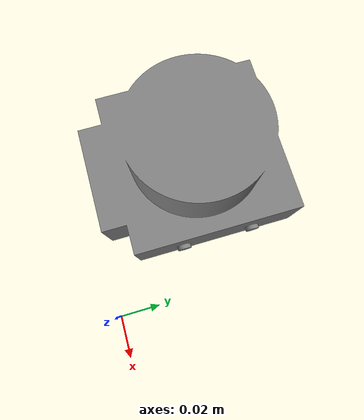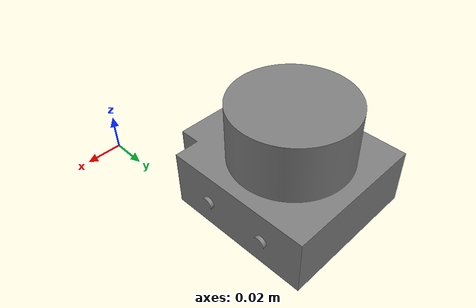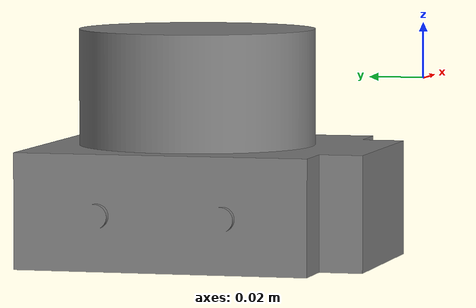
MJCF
<?xml version="1.0" encoding="utf-8"?>
<mujoco model="link">
  <compiler angle="radian" meshdir="assets" autolimits="true" inertiafromgeom="false" fusestatic="false"/>
  <option timestep="0.001" integrator="implicitfast" solver="Newton" iterations="50" ls_iterations="10" gravity="0 0 -9.81"/>
  <default>
    <geom density="0"/>
    <default class="visual">
      <geom contype="0" conaffinity="0" group="2" density="0"/>
    </default>
    <default class="collision">
      <geom group="3" contype="1" conaffinity="1" condim="3" friction="1.0 0.005 0.0001" density="0"/>
    </default>
    <default class="wheel">
      <geom group="3" contype="1" conaffinity="1" condim="3" friction="1.2 0.005 0.0001" density="0"/>
    </default>
    <default class="finger_pad">
      <geom group="3" contype="1" conaffinity="1" condim="4" friction="1.0 0.005 0.0001" solref="0.02 1" solimp="0.9 0.95 0.001" density="0"/>
    </default>
    <default class="sensor_collision">
      <geom group="4" contype="1" conaffinity="1" density="0"/>
    </default>
  </default>
  <asset>
    <mesh name="nanoscan3_visual" file="visual/NANS3.obj"/>
    <mesh name="nanoscan3_collision" file="visual/NANS3_collision.stl"/>
  </asset>
  <worldbody>
    <body name="link" pos="-0.0803 0.053 0" quat="0.7071067812 0 0 -0.7071067812">
      <geom class="visual" type="mesh" mesh="nanoscan3_visual" pos="-0.01 -0.08 -0.04" quat="0.7071067812 0 0 0.7071067812"/>
      <geom class="sensor_collision" type="mesh" mesh="nanoscan3_collision" pos="-0.01 -0.08 -0.04" quat="0.7071067812 0 0 0.7071067812"/>
      <site name="scan_frame" size="0.002"/>
    </body>
  </worldbody>
</mujoco>
